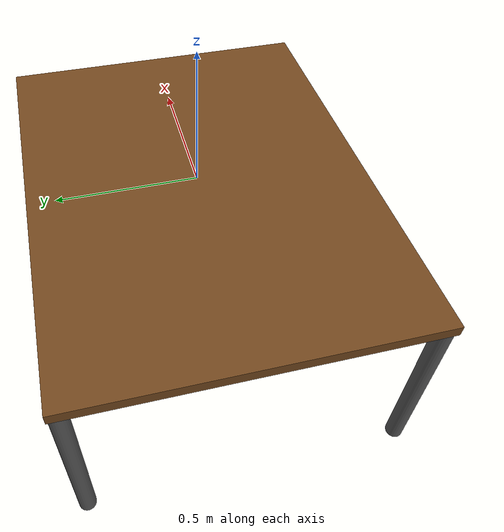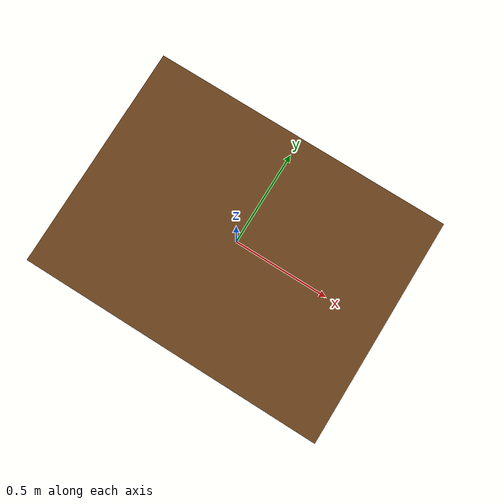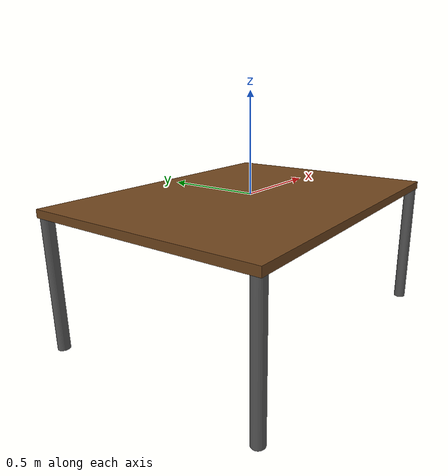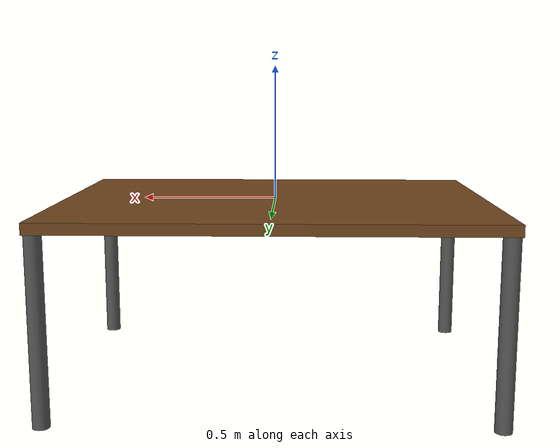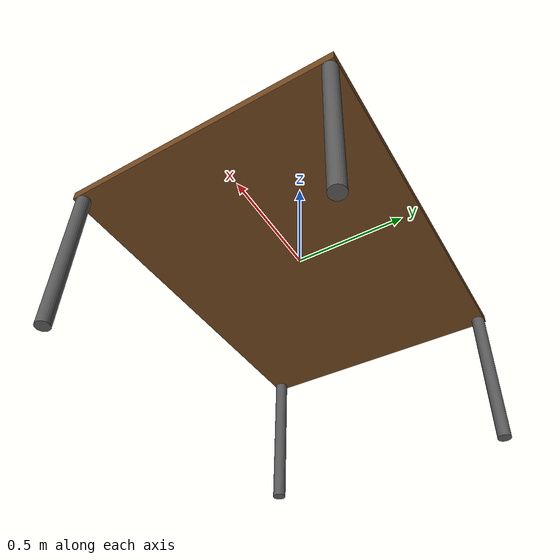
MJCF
<mujoco model="table_asset">
  <!-- mjkdl's table.xml with a slippery top: MuJoCo takes the max contact friction. -->
  <worldbody>
    <!-- Root body origin is the table top surface center. Place this asset at z=surface_z. -->
    <body name="root">
      <geom name="top" type="box" pos="0 0 -0.02" size="0.8 0.6 0.02"
            rgba="0.45 0.28 0.12 1" contype="1" conaffinity="1" condim="3"
            friction="0.23 0.005 0.0001"/>
      <geom name="leg0" type="cylinder" pos="0.77 0.57 -0.37" size="0.03 0.33"
            rgba="0.35 0.35 0.35 1" contype="1" conaffinity="1" condim="3"/>
      <geom name="leg1" type="cylinder" pos="-0.77 0.57 -0.37" size="0.03 0.33"
            rgba="0.35 0.35 0.35 1" contype="1" conaffinity="1" condim="3"/>
      <geom name="leg2" type="cylinder" pos="0.77 -0.57 -0.37" size="0.03 0.33"
            rgba="0.35 0.35 0.35 1" contype="1" conaffinity="1" condim="3"/>
      <geom name="leg3" type="cylinder" pos="-0.77 -0.57 -0.37" size="0.03 0.33"
            rgba="0.35 0.35 0.35 1" contype="1" conaffinity="1" condim="3"/>
      <site name="table_top" pos="0 0 0" size="0.001 0.001 0.001" rgba="0 0 0 0"/>
    </body>
  </worldbody>
</mujoco>
